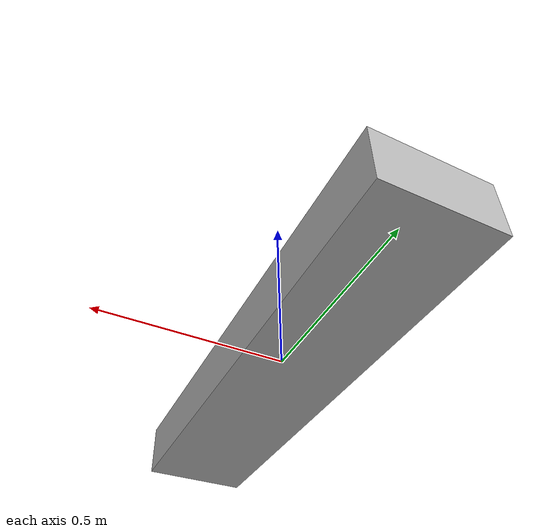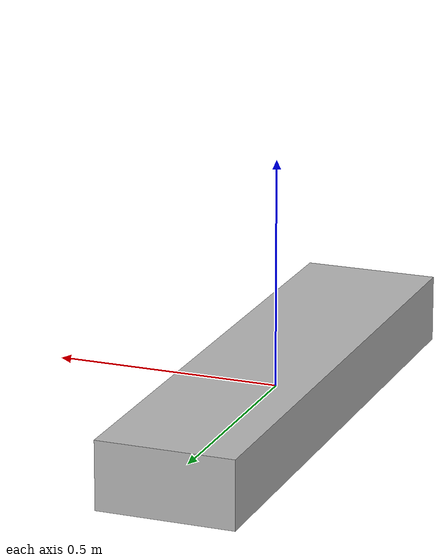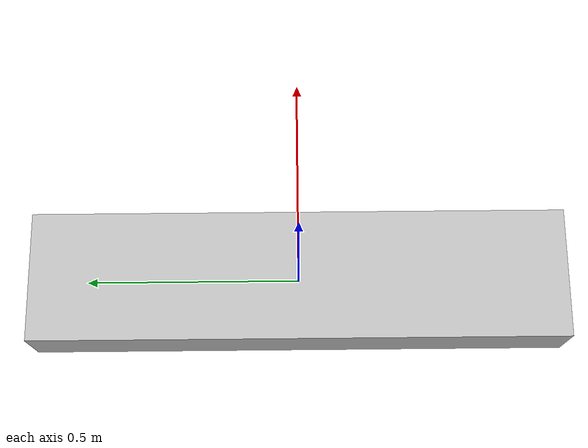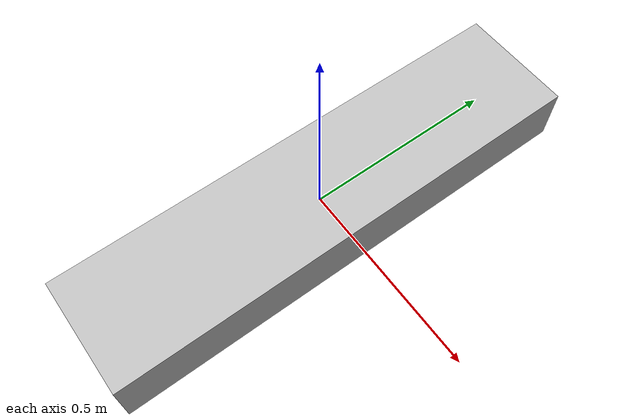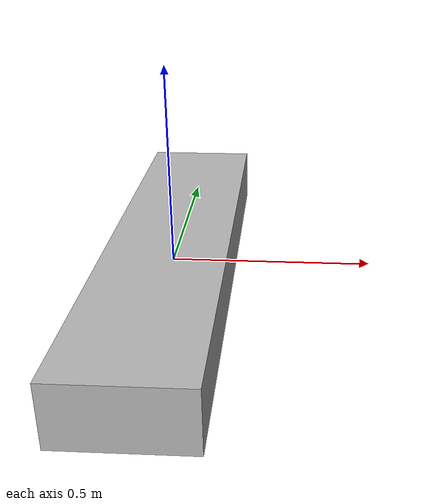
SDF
<?xml version='1.0'?>
<sdf version='1.5'>

  <model name='floating_buoy9'>
    <pose>0 0 0 0 0 0</pose>

    <link name='base_link'>
      <inertial>
        <pose>0 0 0 0 0 0</pose>
        <mass>10</mass>
        <inertia>
          <ixx>1.32</ixx>
          <ixy>0</ixy>
          <ixz>0</ixz>
          <iyy>0.09375</iyy>
          <iyz>0</iyz>
          <izz>1.377</izz>
        </inertia>
      </inertial>

      <visual name='base_link_visual'>
        <pose>0 0 0 0 0 0</pose>
        <geometry>
          <box>
            <size>0.3 1.25 0.15</size>
          </box>
        </geometry>
      </visual>

      <collision name='base_link_collision'>
        <pose>0 0 0 0 0 0</pose>
        <geometry>
          <box>
            <size>0.3 1.25 0.15</size>
          </box>
        </geometry>
      </collision>
    </link>

    <!-- buoyancy plugin -->
    <plugin name="freebuoyancy_gazebo" filename="libfreebuoyancy_gazebo.so">
      <descriptionParam>robot_description</descriptionParam>
      <fluidTopic>current</fluidTopic>
      <alwaysOn>true</alwaysOn>
      <surface>0 0 0</surface>
      <updateRate>.001</updateRate>

      <link name='base_link'>
        <buoyancy>
          <compensation>0.15</compensation>
          <origin xyz= "0 0 0"/>
        </buoyancy>
      </link>

    </plugin>

  </model>

</sdf>
